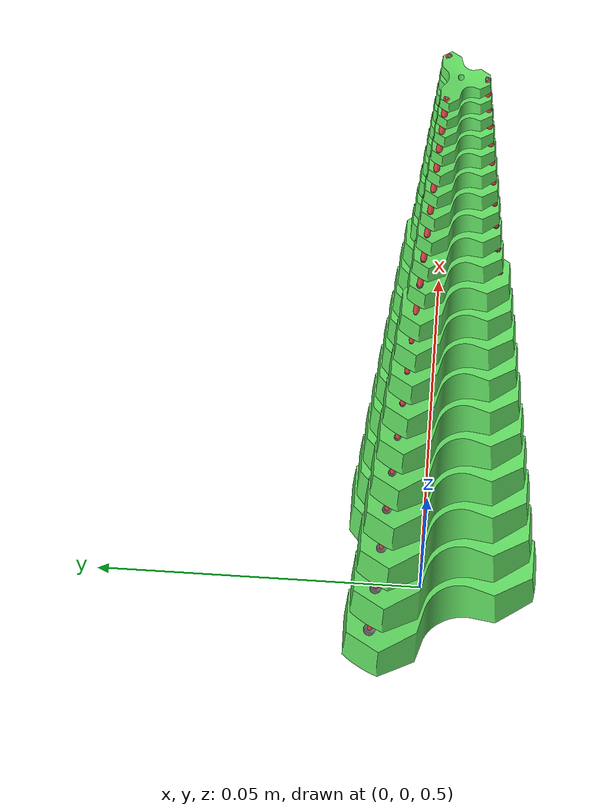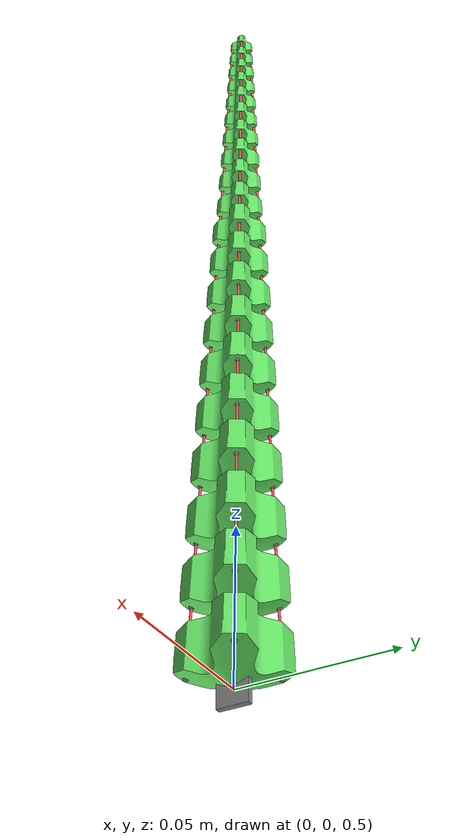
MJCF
<mujoco model="tentacle">
	<compiler angle="radian" />
	<option gravity="0 0 0"/>
	<default>

        <default class="freej">
            <joint type="free" damping="0" armature="0" limited="false"/>
        </default>
    </default>

    <asset>
		<mesh name="1" file="meshes\3d.STL" />
		<mesh name="2" file="meshes\3d.STL" scale="0.9205 0.9205 0.9205"/>
		<mesh name="3" file="meshes\3d.STL" scale="0.8547    0.8547    0.8547"/>
		<mesh name="4" file="meshes\3d.STL" scale="0.7901    0.7901    0.7901"/>
		<mesh name="5" file="meshes\3d.STL" scale="0.7305    0.7305    0.7305"/>
		<mesh name="6" file="meshes\3d.STL" scale="0.6753    0.6753    0.6753"/>
		<mesh name="7" file="meshes\3d.STL" scale="0.6243    0.6243    0.6243"/>
		<mesh name="8" file="meshes\3d.STL" scale="0.5771    0.5771    0.5771"/>
		<mesh name="9" file="meshes\3d.STL" scale="0.5335    0.5335    0.5335"/>
		<mesh name="10" file="meshes\3d.STL" scale="0.4932    0.4932    0.4932"/>
		<mesh name="11" file="meshes\3d.STL" scale="0.4216    0.4216    0.4216"/>
		<mesh name="12" file="meshes\3d.STL" scale="0.3897    0.3897    0.3897"/>
		<mesh name="13" file="meshes\3d.STL" scale="0.3603    0.3603    0.3603"/>
		<mesh name="14" file="meshes\3d.STL" scale="0.3331    0.3331    0.3331"/>
		<mesh name="15" file="meshes\3d.STL" scale="0.3079    0.3079    0.3079"/>
		<mesh name="16" file="meshes\3d.STL" scale="0.2847    0.2847    0.2847"/>
		<mesh name="17" file="meshes\3d.STL" scale="0.2632    0.2632    0.2632"/>
		<mesh name="18" file="meshes\3d.STL" scale="0.2433    0.2433    0.2433"/>
		<mesh name="19" file="meshes\3d.STL" scale="0.2249    0.2249    0.2249"/>
		<mesh name="20" file="meshes\3d.STL" scale="0.2079    0.2079    0.2079"/>

		<texture name="texplane" type="2d" builtin="checker" rgb1=".2 .3 .4" rgb2=".1 0.15 0.2"
            width="512" height="512" mark="cross" markrgb=".8 .8 .8"/>
		<texture type="skybox" builtin="gradient" rgb1="0.3 0.5 0.7" rgb2="0 0 0" width="512" height="3072" />
		<material name="matplane" reflectance="0.3" texture="texplane" texrepeat="1 1" texuniform="true"/>
    </asset>

    <actuator>
        <muscle name="A_1" ctrllimited="true"  lengthrange="0.05  0.4" ctrlrange="0  1" force="100" tendon="t1"/>
		<muscle name="A_2" ctrllimited="true"  lengthrange="0.05  0.4" ctrlrange="0  1" force="100" tendon="t2"/>
		<muscle name="A_3" ctrllimited="true"  lengthrange="0.05  0.4" ctrlrange="0  1" force="100" tendon="t3"/>
    </actuator>

    <worldbody>
		<geom name="ground" type="plane" size="10 10 1" pos="0 0 0" quat="1 0 0 0" material="matplane" condim="1"/>
		<light pos="1 0.5 0.7" dir="-1 0.5 -1" directional="true" castshadow="false" diffuse="0.4 0.4 0.4" specular="0.1 0.1 0.1" />
		<body name="mocapt" mocap="true" pos="0 0 0.5">
			<geom type="box" group="1" size="0.001 0.005 0.005" contype="0" conaffinity="0" rgba=".5 .5 .5 1"/>
		</body>

		<body name="P1" pos="0 0 0.5" euler="0 -1.57 0">
			<joint class="freej"/>
			<geom type="mesh" mesh="1" name="1" pos="0 0 0" euler="0 0 0" rgba="0.4 0.9 0.4 1"/>
			<inertial pos="0.011 0 0" quat="1 0 0 0" mass="0.01" diaginertia="0.000083 0.000083 0.00005" />
			<site name="s1_01" pos="0.007 -0.015 0" size="0.001 0.001 0.001"/>
			<site name="s1_02" pos="0.007 0.0075 0.013" size="0.001 0.001 0.001"/>
			<site name="s1_03" pos="0.007 0.0075 -0.013" size="0.001 0.001 0.001"/>
			<site name="s1_04" pos="0.02 -0.0145 0" size="0.001 0.001 0.001"/>
			<site name="s1_05" pos="0.02 0.0074 0.0125" size="0.001 0.001 0.001"/>
			<site name="s1_06" pos="0.02 0.0074 -0.0125" size="0.001 0.001 0.001"/>

			<body name="P2" pos="0.022 0 0">
				<joint name="J2" pos="0 0 0" axis="1 0 0" type="ball"   stiffness="0.462" damping="0.02"  />
				<geom type="mesh" mesh="2" name="2" pos="0 0 0" euler="0 0 0" rgba="0.4 0.9 0.4 1"/>
				<inertial pos="0.0102 0 0" quat="1 0 0 0" mass="0.009205" diaginertia="0.000083 0.000083 0.00005" />
				<site name="s2_01" pos="0.0064516   -0.013825           0" size="0.00092166  0.00092166  0.00092166"/>
     <site name="s2_02" pos="0.0064516   0.0069124    0.011982" size="0.00092166  0.00092166  0.00092166"/>
     <site name="s2_03" pos="0.0064516   0.0069124   -0.011982" size="0.00092166  0.00092166  0.00092166"/>
     <site name="s2_04" pos="0.018433   -0.013364           0" size="0.00092166  0.00092166  0.00092166"/>
     <site name="s2_05" pos="0.018433   0.0068203    0.011521" size="0.00092166  0.00092166  0.00092166"/>
     <site name="s2_06" pos="0.018433   0.0068203   -0.011521" size="0.00092166  0.00092166  0.00092166"/>

				<body name="P3" pos="0.0203 0 0">
					<joint name="J3" pos="0 0 0" axis="1 0 0" type="ball"   stiffness="0.427" damping="0.02"  />
					<geom type="mesh" mesh="3" name="3" pos="0 0 0" euler="0 0 0" rgba="0.4 0.9 0.4 1"/>
					<inertial pos="0.0094 0 0" quat="1 0 0 0" mass="0.008546" diaginertia="0.000083 0.000083 0.00005" />
					<site name="s3_01" pos="0.0059462   -0.012742           0" size="0.00084946  0.00084946  0.00084946"/>
     <site name="s3_02" pos="0.0059462   0.0063709    0.011043" size="0.00084946  0.00084946  0.00084946"/>
     <site name="s3_03" pos="0.0059462   0.0063709   -0.011043" size="0.00084946  0.00084946  0.00084946"/>
     <site name="s3_04" pos="0.016989   -0.012317           0" size="0.00084946  0.00084946  0.00084946"/>
     <site name="s3_05" pos="0.016989    0.006286    0.010618" size="0.00084946  0.00084946  0.00084946"/>
     <site name="s3_06" pos="0.016989    0.006286   -0.010618" size="0.00084946  0.00084946  0.00084946"/>
					<body name="P4" pos="0.0188 0 0">
						<joint name="J4" pos="0 0 0" axis="1 0 0" type="ball"   stiffness="0.395" damping="0.02"  />
						<geom type="mesh" mesh="4" name="4" pos="0 0 0" euler="0 0 0" rgba="0.4 0.9 0.4 1"/>
						<inertial pos="0.0087 0 0" quat="1 0 0 0" mass="0.00790" diaginertia="0.000083 0.000083 0.00005" />
						<site name="s4_01" pos="0.0054804   -0.011744           0" size="0.00078291  0.00078291  0.00078291"/>
     <site name="s4_02" pos="0.0054804   0.0058718    0.010178" size="0.00078291  0.00078291  0.00078291"/>
     <site name="s4_03" pos="0.0054804   0.0058718   -0.010178" size="0.00078291  0.00078291  0.00078291"/>
     <site name="s4_04" pos="0.015658   -0.011352           0" size="0.00078291  0.00078291  0.00078291"/>
     <site name="s4_05" pos="0.015658   0.0057935   0.0097864" size="0.00078291  0.00078291  0.00078291"/>
     <site name="s4_06" pos="0.015658   0.0057935  -0.0097864" size="0.00078291  0.00078291  0.00078291"/>
						<body name="P5" pos="0.0174 0 0">
							<joint name="J5" pos="0 0 0" axis="1 0 0" type="ball"   stiffness="0.365" damping="0.02"  />
							<geom type="mesh" mesh="5" name="5" pos="0 0 0" euler="0 0 0" rgba="0.4 0.9 0.4 1"/>
							<inertial pos="0.008 0 0" quat="1 0 0 0" mass="0.00730" diaginertia="0.000083 0.000083 0.00005" />
							<site name="s5_01" pos="0.005051   -0.010824           0" size="0.00072157  0.00072157  0.00072157"/>
     <site name="s5_02" pos="0.005051   0.0054118   0.0093805" size="0.00072157  0.00072157  0.00072157"/>
     <site name="s5_03" pos="0.005051   0.0054118  -0.0093805" size="0.00072157  0.00072157  0.00072157"/>
     <site name="s5_04" pos="0.014431   -0.010463           0" size="0.00072157  0.00072157  0.00072157"/>
     <site name="s5_05" pos="0.014431   0.0053396   0.0090197" size="0.00072157  0.00072157  0.00072157"/>
     <site name="s5_06" pos="0.014431   0.0053396  -0.0090197" size="0.00072157  0.00072157  0.00072157"/>
							<body name="P6" pos="0.0161 0 0">
								<joint name="J6" pos="0 0 0" axis="1 0 0" type="ball"   stiffness="0.337" damping="0.02"  />
								<geom type="mesh" mesh="6" name="6" pos="0 0 0" euler="0 0 0" rgba="0.4 0.9 0.4 1"/>
								<inertial pos="0.0074 0 0" quat="1 0 0 0" mass="0.00675" diaginertia="0.000083 0.000083 0.00005" />
								<site name="s6_01" pos="0.0046553  -0.0099757           0" size="0.00066505  0.00066505  0.00066505"/>
     <site name="s6_02" pos="0.0046553   0.0049878   0.0086456" size="0.00066505  0.00066505  0.00066505"/>
     <site name="s6_03" pos="0.0046553   0.0049878  -0.0086456" size="0.00066505  0.00066505  0.00066505"/>
     <site name="s6_04" pos="0.013301  -0.0096432           0" size="0.00066505  0.00066505  0.00066505"/>
     <site name="s6_05" pos="0.013301   0.0049213   0.0083131" size="0.00066505  0.00066505  0.00066505"/>
     <site name="s6_06" pos="0.013301   0.0049213  -0.0083131" size="0.00066505  0.00066505  0.00066505"/>
								<body name="P7" pos="0.0149 0 0">
									<joint name="J7" pos="0 0 0" axis="1 0 0" type="ball"   stiffness="0.312" damping="0.02"  />
									<geom type="mesh" mesh="7" name="7" pos="0 0 0" euler="0 0 0" rgba="0.4 0.9 0.4 1"/>
									<inertial pos="0.0069 0 0" quat="1 0 0 0" mass="0.00624" diaginertia="0.000083 0.000083 0.00005" />
									<site name="s7_01" pos="0.0042906  -0.0091942           0" size="0.00061295  0.00061295  0.00061295"/>
     <site name="s7_02" pos="0.0042906   0.0045971   0.0079683" size="0.00061295  0.00061295  0.00061295"/>
     <site name="s7_03" pos="0.0042906   0.0045971  -0.0079683" size="0.00061295  0.00061295  0.00061295"/>
     <site name="s7_04" pos="0.012259  -0.0088877           0" size="0.00061295  0.00061295  0.00061295"/>
     <site name="s7_05" pos="0.012259   0.0045358   0.0076618" size="0.00061295  0.00061295  0.00061295"/>
     <site name="s7_06" pos="0.012259   0.0045358  -0.0076618" size="0.00061295  0.00061295  0.00061295"/>
									<body name="P8" pos="0.0137 0 0">
										<joint name="J8" pos="0 0 0" axis="1 0 0" type="ball"   stiffness="0.288" damping="0.02"  />
										<geom type="mesh" mesh="8" name="8" pos="0 0 0" euler="0 0 0" rgba="0.4 0.9 0.4 1"/>
										<inertial pos="0.0063 0 0" quat="1 0 0 0" mass="0.00577" diaginertia="0.000083 0.000083 0.00005" />
										<site name="s8_01" pos="0.0039545  -0.0084739           0" size="0.00056493  0.00056493  0.00056493"/>
     <site name="s8_02" pos="0.0039545   0.0042369    0.007344" size="0.00056493  0.00056493  0.00056493"/>
     <site name="s8_03" pos="0.0039545   0.0042369   -0.007344" size="0.00056493  0.00056493  0.00056493"/>
     <site name="s8_04" pos="0.011299  -0.0081914           0" size="0.00056493  0.00056493  0.00056493"/>
     <site name="s8_05" pos="0.011299   0.0041805   0.0070616" size="0.00056493  0.00056493  0.00056493"/>
     <site name="s8_06" pos="0.011299   0.0041805  -0.0070616" size="0.00056493  0.00056493  0.00056493"/>
										<body name="P9" pos="0.0127 0 0">
											<joint name="J9" pos="0 0 0" axis="1 0 0" type="ball"   stiffness="0.266" damping="0.02"  />
											<geom type="mesh" mesh="9" name="9" pos="0 0 0" euler="0 0 0" rgba="0.4 0.9 0.4 1"/>
											<inertial pos="0.0059 0 0" quat="1 0 0 0" mass="0.00534" diaginertia="0.000083 0.000083 0.00005" />
											<site name="s9_01" pos="0.0036447    -0.00781           0" size="0.00052067  0.00052067  0.00052067"/>
     <site name="s9_02" pos="0.0036447    0.003905   0.0067687" size="0.00052067  0.00052067  0.00052067"/>
     <site name="s9_03" pos="0.0036447    0.003905  -0.0067687" size="0.00052067  0.00052067  0.00052067"/>
     <site name="s9_04" pos="0.010413  -0.0075497           0" size="0.00052067  0.00052067  0.00052067"/>
     <site name="s9_05" pos="0.010413    0.003853   0.0065084" size="0.00052067  0.00052067  0.00052067"/>
     <site name="s9_06" pos="0.010413    0.003853  -0.0065084" size="0.00052067  0.00052067  0.00052067"/>
											<body name="P10" pos="0.0117 0 0">
												<joint name="J10" pos="0 0 0" axis="1 0 0" type="ball"   stiffness="0.246" damping="0.02"  />
												<geom type="mesh" mesh="10" name="10" pos="0 0 0" euler="0 0 0" rgba="0.4 0.9 0.4 1"/>
												<inertial pos="0.0054 0 0" quat="1 0 0 0" mass="0.00493" diaginertia="0.000083 0.000083 0.00005" />
												<site name="s10_01" pos="0.0033592  -0.0071982           0" size="0.00047988  0.00047988  0.00047988"/>
     <site name="s10_02" pos="0.0033592   0.0035991   0.0062384" size="0.00047988  0.00047988  0.00047988"/>
     <site name="s10_03" pos="0.0033592   0.0035991  -0.0062384" size="0.00047988  0.00047988  0.00047988"/>
     <site name="s10_04" pos="0.0095976  -0.0069583           0" size="0.00047988  0.00047988  0.00047988"/>
     <site name="s10_05" pos="0.0095976   0.0035511   0.0059985" size="0.00047988  0.00047988  0.00047988"/>
     <site name="s10_06" pos="0.0095976   0.0035511  -0.0059985" size="0.00047988  0.00047988  0.00047988"/>
												<body name="P11" pos="0.0109 0 0">
													<joint name="J11" pos="0 0 0" axis="1 0 0" type="ball"   stiffness="0.228" damping="0.02"  />
													<geom type="mesh" mesh="11" name="11" pos="0 0 0" euler="0 0 0" rgba="0.4 0.9 0.4 1"/>
													<inertial pos="0.005 0 0" quat="1 0 0 0" mass="0.00456" diaginertia="0.000083 0.000083 0.00005" />
													<site name="s11_01" pos="0.003096  -0.0066343           0" size="0.00044229  0.00044229  0.00044229"/>
     <site name="s11_02" pos="0.003096   0.0033171   0.0057497" size="0.00044229  0.00044229  0.00044229"/>
     <site name="s11_03" pos="0.003096   0.0033171  -0.0057497" size="0.00044229  0.00044229  0.00044229"/>
     <site name="s11_04" pos="0.0088457  -0.0064131           0" size="0.00044229  0.00044229  0.00044229"/>
     <site name="s11_05" pos="0.0088457   0.0032729   0.0055286" size="0.00044229  0.00044229  0.00044229"/>
     <site name="s11_06" pos="0.0088457   0.0032729  -0.0055286" size="0.00044229  0.00044229  0.00044229"/>
													<body name="P12" pos="0.01 0 0">
														<joint name="J12" pos="0 0 0" axis="1 0 0" type="ball"   stiffness="0.210" damping="0.02"  />
														<geom type="mesh" mesh="12" name="12" pos="0 0 0" euler="0 0 0" rgba="0.4 0.9 0.4 1"/>
														<inertial pos="0.0046 0 0" quat="1 0 0 0" mass="0.00422" diaginertia="0.000083 0.000083 0.00005" />
														<site name="s12_01" pos="0.0028535  -0.0061145           0" size="0.00040764  0.00040764  0.00040764"/>
     <site name="s12_02" pos="0.0028535   0.0030573   0.0052993" size="0.00040764  0.00040764  0.00040764"/>
     <site name="s12_03" pos="0.0028535   0.0030573  -0.0052993" size="0.00040764  0.00040764  0.00040764"/>
     <site name="s12_04" pos="0.0081527  -0.0059107           0" size="0.00040764  0.00040764  0.00040764"/>
     <site name="s12_05" pos="0.0081527   0.0030165   0.0050955" size="0.00040764  0.00040764  0.00040764"/>
     <site name="s12_06" pos="0.0081527   0.0030165  -0.0050955" size="0.00040764  0.00040764  0.00040764"/>
														<body name="P13" pos="0.0093 0 0">
															<joint name="J13" pos="0 0 0" axis="1 0 0" type="ball"   stiffness="0.194" damping="0.02"  />
															<geom type="mesh" mesh="13" name="13" pos="0 0 0" euler="0 0 0" rgba="0.4 0.9 0.4 1"/>
															<inertial pos="0.0043 0 0" quat="1 0 0 0" mass="0.00390" diaginertia="0.000083 0.000083 0.00005" />
															<site name="s13_01" pos="0.0026299  -0.0056355           0" size="0.0003757   0.0003757   0.0003757"/>
     <site name="s13_02" pos="0.0026299   0.0028178   0.0048841" size="0.0003757   0.0003757   0.0003757"/>
     <site name="s13_03" pos="0.0026299   0.0028178  -0.0048841" size="0.0003757   0.0003757   0.0003757"/>
     <site name="s13_04" pos="0.007514  -0.0054477           0" size="0.0003757   0.0003757   0.0003757"/>
     <site name="s13_05" pos="0.007514   0.0027802   0.0046963" size="0.0003757   0.0003757   0.0003757"/>
     <site name="s13_06" pos="0.007514   0.0027802  -0.0046963" size="0.0003757   0.0003757   0.0003757"/>
															<body name="P14" pos="0.0086 0 0">
																<joint name="J14" pos="0 0 0" axis="1 0 0" type="ball"   stiffness="0.180" damping="0.02"  />
																<geom type="mesh" mesh="14" name="14" pos="0 0 0" euler="0 0 0" rgba="0.4 0.9 0.4 1"/>
																<inertial pos="0.004 0 0" quat="1 0 0 0" mass="0.00360" diaginertia="0.000083 0.000083 0.00005" />
																<site name="s14_01" pos="0.0024239   -0.005194           0" size="0.00034627  0.00034627  0.00034627"/>
     <site name="s14_02" pos="0.0024239    0.002597   0.0045015" size="0.00034627  0.00034627  0.00034627"/>
     <site name="s14_03" pos="0.0024239    0.002597  -0.0045015" size="0.00034627  0.00034627  0.00034627"/>
     <site name="s14_04" pos="0.0069254  -0.0050209           0" size="0.00034627  0.00034627  0.00034627"/>
     <site name="s14_05" pos="0.0069254   0.0025624   0.0043284" size="0.00034627  0.00034627  0.00034627"/>
     <site name="s14_06" pos="0.0069254   0.0025624  -0.0043284" size="0.00034627  0.00034627  0.00034627"/>
																<body name="P15" pos="0.0079 0 0">
																	<joint name="J15" pos="0 0 0" axis="1 0 0" type="ball"   stiffness="0.166" damping="0.02"  />
																	<geom type="mesh" mesh="15" name="15" pos="0 0 0" euler="0 0 0" rgba="0.4 0.9 0.4 1"/>
																	<inertial pos="0.0037 0 0" quat="1 0 0 0" mass="0.00333" diaginertia="0.000083 0.000083 0.00005" />
																	<site name="s15_01" pos="0.002234  -0.0047871           0" size="0.00031914  0.00031914  0.00031914"/>
     <site name="s15_02" pos="0.002234   0.0023936   0.0041488" size="0.00031914  0.00031914  0.00031914"/>
     <site name="s15_03" pos="0.002234   0.0023936  -0.0041488" size="0.00031914  0.00031914  0.00031914"/>
     <site name="s15_04" pos="0.0063828  -0.0046276           0" size="0.00031914  0.00031914  0.00031914"/>
     <site name="s15_05" pos="0.0063828   0.0023616   0.0039893" size="0.00031914  0.00031914  0.00031914"/>
     <site name="s15_06" pos="0.0063828   0.0023616  -0.0039893" size="0.00031914  0.00031914  0.00031914"/>
																	<body name="P16" pos="0.0073 0 0">
																		<joint name="J16" pos="0 0 0" axis="1 0 0" type="ball"   stiffness="0.153" damping="0.02"  />
																		<geom type="mesh" mesh="16" name="16" pos="0 0 0" euler="0 0 0" rgba="0.4 0.9 0.4 1"/>
																		<inertial pos="0.0034 0 0" quat="1 0 0 0" mass="0.00308" diaginertia="0.000083 0.000083 0.00005" />
																		<site name="s16_01" pos="0.002059  -0.0044121           0" size="0.00029414  0.00029414  0.00029414"/>
     <site name="s16_02" pos="0.002059    0.002206   0.0038238" size="0.00029414  0.00029414  0.00029414"/>
     <site name="s16_03" pos="0.002059    0.002206  -0.0038238" size="0.00029414  0.00029414  0.00029414"/>
     <site name="s16_04" pos="0.0058828   -0.004265           0" size="0.00029414  0.00029414  0.00029414"/>
     <site name="s16_05" pos="0.0058828   0.0021766   0.0036767" size="0.00029414  0.00029414  0.00029414"/>
     <site name="s16_06" pos="0.0058828   0.0021766  -0.0036767" size="0.00029414  0.00029414  0.00029414"/>
																		<body name="P17" pos="0.0068 0 0">
																			<joint name="J17" pos="0 0 0" axis="1 0 0" type="ball"   stiffness="0.142" damping="0.02"  />
																			<geom type="mesh" mesh="17" name="17" pos="0 0 0" euler="0 0 0" rgba="0.4 0.9 0.4 1"/>
																			<inertial pos="0.0031 0 0" quat="1 0 0 0" mass="0.00285" diaginertia="0.000083 0.000083 0.00005" />
																			<site name="s17_01" pos="0.0018977  -0.0040665           0" size="0.0002711   0.0002711   0.0002711"/>
     <site name="s17_02" pos="0.0018977   0.0020332   0.0035243" size="0.0002711   0.0002711   0.0002711"/>
     <site name="s17_03" pos="0.0018977   0.0020332  -0.0035243" size="0.0002711   0.0002711   0.0002711"/>
     <site name="s17_04" pos="0.0054219  -0.0039309           0" size="0.0002711   0.0002711   0.0002711"/>
     <site name="s17_05" pos="0.0054219   0.0020061   0.0033887" size="0.0002711   0.0002711   0.0002711"/>
     <site name="s17_06" pos="0.0054219   0.0020061  -0.0033887" size="0.0002711   0.0002711   0.0002711"/>
																			<body name="P18" pos="0.0063 0 0">
																				<joint name="J18" pos="0 0 0" axis="1 0 0" type="ball"   stiffness="0.131" damping="0.02"  />
																				<geom type="mesh" mesh="18" name="18" pos="0 0 0" euler="0 0 0" rgba="0.4 0.9 0.4 1"/>
																				<inertial pos="0.0029 0 0" quat="1 0 0 0" mass="0.00263" diaginertia="0.000083 0.000083 0.00005" />
																				<site name="s18_01" pos="0.001749  -0.0037479           0" size="0.00024986  0.00024986  0.00024986"/>
     <site name="s18_02" pos="0.001749   0.0018739   0.0032482" size="0.00024986  0.00024986  0.00024986"/>
     <site name="s18_03" pos="0.001749   0.0018739  -0.0032482" size="0.00024986  0.00024986  0.00024986"/>
     <site name="s18_04" pos="0.0049972   -0.003623           0" size="0.00024986  0.00024986  0.00024986"/>
     <site name="s18_05" pos="0.0049972    0.001849   0.0031232" size="0.00024986  0.00024986  0.00024986"/>
     <site name="s18_06" pos="0.0049972    0.001849  -0.0031232" size="0.00024986  0.00024986  0.00024986"/>
																				<body name="P19" pos="0.0058 0 0">
																					<joint name="J19" pos="0 0 0" axis="1 0 0" type="ball"   stiffness="0.121" damping="0.02"  />
																					<geom type="mesh" mesh="19" name="19" pos="0 0 0" euler="0 0 0" rgba="0.4 0.9 0.4 1"/>
																					<inertial pos="0.0027 0 0" quat="1 0 0 0" mass="0.00243" diaginertia="0.000083 0.000083 0.00005" />
																					<site name="s19_01" pos="0.001612  -0.0034543           0" size="0.00023028  0.00023028  0.00023028"/>
     <site name="s19_02" pos="0.001612   0.0017271   0.0029937" size="0.00023028  0.00023028  0.00023028"/>
     <site name="s19_03" pos="0.001612   0.0017271  -0.0029937" size="0.00023028  0.00023028  0.00023028"/>
     <site name="s19_04" pos="0.0046057  -0.0033391           0" size="0.00023028  0.00023028  0.00023028"/>
     <site name="s19_05" pos="0.0046057   0.0017041   0.0028786" size="0.00023028  0.00023028  0.00023028"/>
     <site name="s19_06" pos="0.0046057   0.0017041  -0.0028786" size="0.00023028  0.00023028  0.00023028"/>
																					<body name="P20" pos="0.0054 0 0">
																						<joint name="J20" pos="0 0 0" axis="1 0 0" type="ball"   stiffness="0.112" damping="0.02"  />
																						<geom type="mesh" mesh="20" name="20" pos="0 0 0" euler="0 0 0" rgba="0.4 0.9 0.4 1"/>
																						<inertial pos="0.0025 0 0" quat="1 0 0 0" mass="0.00225" diaginertia="0.000083 0.000083 0.00005" />
																						<site name="s20_01" pos="0.0014857  -0.0031837           0" size="0.00021224  0.00021224  0.00021224"/>
     <site name="s20_02" pos="0.0014857   0.0015918   0.0027592" size="0.00021224  0.00021224  0.00021224"/>
     <site name="s20_03" pos="0.0014857   0.0015918  -0.0027592" size="0.00021224  0.00021224  0.00021224"/>
     <site name="s20_04" pos="0.0042449  -0.0030775           0" size="0.00021224  0.00021224  0.00021224"/>
     <site name="s20_05" pos="0.0042449   0.0015706    0.002653" size="0.00021224  0.00021224  0.00021224"/>
     <site name="s20_06" pos="0.0042449   0.0015706   -0.002653" size="0.00021224  0.00021224  0.00021224"/>
																					</body>
																				</body>
																			</body>
																		</body>
																	</body>
																</body>
															</body>
														</body>
													</body>
												</body>
											</body>
										</body>
									</body>
								</body>
							</body>
						</body>
					</body>
				</body>
			</body>
		</body>

    </worldbody>

<tendon>
	<spatial name="t1" width="0.0004" rgba=".95 .3 .3 1" limited="true" frictionloss="0.1" range="0 0.33">
		<site site="s1_01"/>
		<site site="s1_04"/>
		<site site="s2_01"/>
		<site site="s2_04"/>
		<site site="s3_01"/>
		<site site="s3_04"/>
		<site site="s4_01"/>
		<site site="s4_04"/>
		<site site="s5_01"/>
		<site site="s5_04"/>
		<site site="s6_01"/>
		<site site="s6_04"/>
		<site site="s7_01"/>
		<site site="s7_04"/>
		<site site="s8_01"/>
		<site site="s8_04"/>
		<site site="s9_01"/>
		<site site="s9_04"/>
		<site site="s10_01"/>
		<site site="s10_04"/>
		<site site="s11_01"/>
		<site site="s11_04"/>
		<site site="s12_01"/>
		<site site="s12_04"/>
		<site site="s13_01"/>
		<site site="s13_04"/>
		<site site="s14_01"/>
		<site site="s14_04"/>
		<site site="s15_01"/>
		<site site="s15_04"/>
		<site site="s16_01"/>
		<site site="s16_04"/>
		<site site="s17_01"/>
		<site site="s17_04"/>
		<site site="s18_01"/>
		<site site="s18_04"/>
		<site site="s19_01"/>
		<site site="s19_04"/>
		<site site="s20_01"/>
		<site site="s20_04"/>

	</spatial>

	<spatial name="t2" width="0.0004" rgba=".95 .3 .3 1" limited="true" frictionloss="0.1" range="0 0.33">
		<site site="s1_02"/>
		<site site="s1_05"/>
		<site site="s2_02"/>
		<site site="s2_05"/>
		<site site="s3_02"/>
		<site site="s3_05"/>
		<site site="s4_02"/>
		<site site="s4_05"/>
		<site site="s5_02"/>
		<site site="s5_05"/>
		<site site="s6_02"/>
		<site site="s6_05"/>
		<site site="s7_02"/>
		<site site="s7_05"/>
		<site site="s8_02"/>
		<site site="s8_05"/>
		<site site="s9_02"/>
		<site site="s9_05"/>
		<site site="s10_02"/>
		<site site="s10_05"/>
		<site site="s11_02"/>
		<site site="s11_05"/>
		<site site="s12_02"/>
		<site site="s12_05"/>
		<site site="s13_02"/>
		<site site="s13_05"/>
		<site site="s14_02"/>
		<site site="s14_05"/>
		<site site="s15_02"/>
		<site site="s15_05"/>
		<site site="s16_02"/>
		<site site="s16_05"/>
		<site site="s17_02"/>
		<site site="s17_05"/>
		<site site="s18_02"/>
		<site site="s18_05"/>
		<site site="s19_02"/>
		<site site="s19_05"/>
		<site site="s20_02"/>
		<site site="s20_05"/>

	</spatial>

	<spatial name="t3" width="0.0004" rgba=".95 .3 .3 1" limited="true" frictionloss="0.1" range="0 0.33">
		<site site="s1_03"/>
		<site site="s1_06"/>
		<site site="s2_03"/>
		<site site="s2_06"/>
		<site site="s3_03"/>
		<site site="s3_06"/>
		<site site="s4_03"/>
		<site site="s4_06"/>
		<site site="s5_03"/>
		<site site="s5_06"/>
		<site site="s6_03"/>
		<site site="s6_06"/>
		<site site="s7_03"/>
		<site site="s7_06"/>
		<site site="s8_03"/>
		<site site="s8_06"/>
		<site site="s9_03"/>
		<site site="s9_06"/>
		<site site="s10_03"/>
		<site site="s10_06"/>
		<site site="s11_03"/>
		<site site="s11_06"/>
		<site site="s12_03"/>
		<site site="s12_06"/>
		<site site="s13_03"/>
		<site site="s13_06"/>
		<site site="s14_03"/>
		<site site="s14_06"/>
		<site site="s15_03"/>
		<site site="s15_06"/>
		<site site="s16_03"/>
		<site site="s16_06"/>
		<site site="s17_03"/>
		<site site="s17_06"/>
		<site site="s18_03"/>
		<site site="s18_06"/>
		<site site="s19_03"/>
		<site site="s19_06"/>
		<site site="s20_03"/>
		<site site="s20_06"/>

	</spatial>
</tendon>

	<equality>
		<weld body1="mocapt" body2="P1" solref="0.01 1" solimp=".9 .9 0.01"/>

    </equality>
    <sensor>

    </sensor>
</mujoco>
